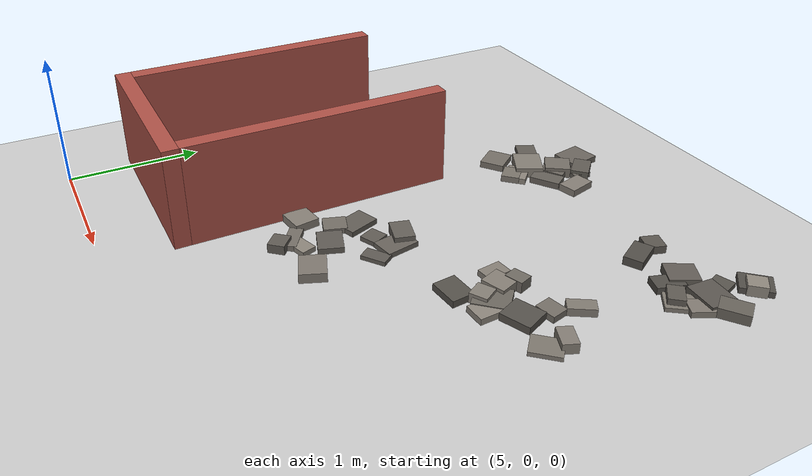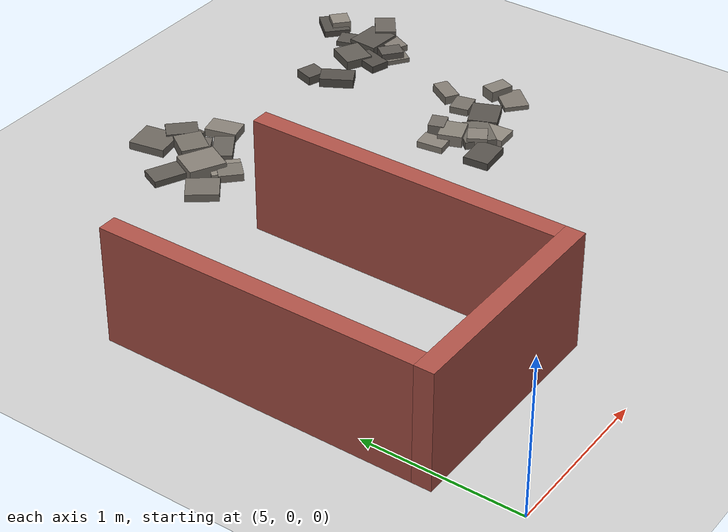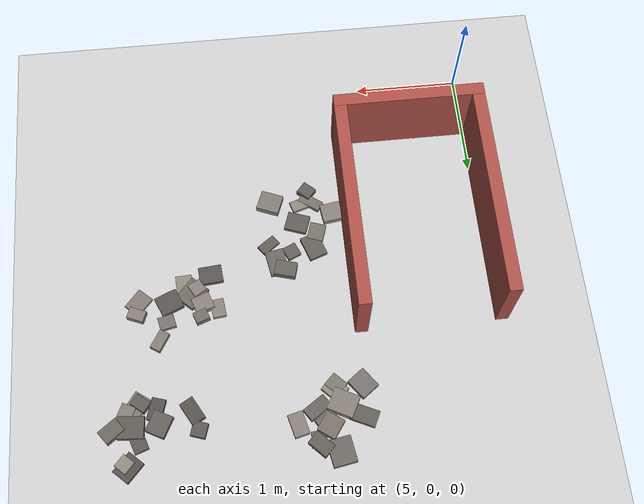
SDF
<sdf version="1.6">
 <world name="competition_arena">
  <include><uri>model://sun</uri></include>
  <include><uri>model://ground_plane</uri></include>
  <model name="dead_end">
   <static>true</static>
   <link name="structure">
    <collision name="left_collision">
     <pose>4.94 1.6 0.375 0 0 1.5707963</pose>
     <geometry><box><size>2 0.12 0.75</size></box></geometry>
     <surface><friction><ode><mu>0.9</mu><mu2>0.9</mu2></ode></friction></surface>
    </collision>
    <visual name="left_visual">
     <pose>4.94 1.6 0.375 0 0 1.5707963</pose>
     <geometry><box><size>2 0.12 0.75</size></box></geometry>
     <material><ambient>0.68 0.32 0.28 1</ambient><diffuse>0.68 0.32 0.28 1</diffuse></material>
    </visual>
    <collision name="right_collision">
     <pose>6.26 1.6 0.375 0 0 1.5707963</pose>
     <geometry><box><size>2 0.12 0.75</size></box></geometry>
     <surface><friction><ode><mu>0.9</mu><mu2>0.9</mu2></ode></friction></surface>
    </collision>
    <visual name="right_visual">
     <pose>6.26 1.6 0.375 0 0 1.5707963</pose>
     <geometry><box><size>2 0.12 0.75</size></box></geometry>
     <material><ambient>0.68 0.32 0.28 1</ambient><diffuse>0.68 0.32 0.28 1</diffuse></material>
    </visual>
    <collision name="closed_end_collision">
     <pose>5.6 0.54 0.375 0 0 0</pose>
     <geometry><box><size>1.44 0.12 0.75</size></box></geometry>
     <surface><friction><ode><mu>0.9</mu><mu2>0.9</mu2></ode></friction></surface>
    </collision>
    <visual name="closed_end_visual">
     <pose>5.6 0.54 0.375 0 0 0</pose>
     <geometry><box><size>1.44 0.12 0.75</size></box></geometry>
     <material><ambient>0.68 0.32 0.28 1</ambient><diffuse>0.68 0.32 0.28 1</diffuse></material>
    </visual>
   </link>
  </model>
  <model name="rubble_patch_1">
   <static>true</static>
   <link name="structure">
    <collision name="rock_00_collision">
     <pose>6.7544395 1.445329 0.021875733 0 0 2.8028648</pose>
     <geometry><box><size>0.21574126 0.18120394 0.043751466</size></box></geometry>
     <surface><friction><ode><mu>0.9</mu><mu2>0.9</mu2></ode></friction></surface>
    </collision>
    <visual name="rock_00_visual">
     <pose>6.7544395 1.445329 0.021875733 0 0 2.8028648</pose>
     <geometry><box><size>0.21574126 0.18120394 0.043751466</size></box></geometry>
     <material>
      <ambient>0.37357058 0.35489205 0.32874211 1</ambient>
      <diffuse>0.37357058 0.35489205 0.32874211 1</diffuse>
     </material>
    </visual>
    <collision name="rock_01_collision">
     <pose>7.0497635 1.6518465 0.01574493 0 0 0.6246669</pose>
     <geometry><box><size>0.18569619 0.10318432 0.031489861</size></box></geometry>
     <surface><friction><ode><mu>0.9</mu><mu2>0.9</mu2></ode></friction></surface>
    </collision>
    <visual name="rock_01_visual">
     <pose>7.0497635 1.6518465 0.01574493 0 0 0.6246669</pose>
     <geometry><box><size>0.18569619 0.10318432 0.031489861</size></box></geometry>
     <material>
      <ambient>0.37247311 0.35384946 0.32777634 1</ambient>
      <diffuse>0.37247311 0.35384946 0.32777634 1</diffuse>
     </material>
    </visual>
    <collision name="rock_02_collision">
     <pose>6.6045481 1.2313939 0.020511016 0 0 2.5315558</pose>
     <geometry><box><size>0.22522596 0.10077985 0.041022031</size></box></geometry>
     <surface><friction><ode><mu>0.9</mu><mu2>0.9</mu2></ode></friction></surface>
    </collision>
    <visual name="rock_02_visual">
     <pose>6.6045481 1.2313939 0.020511016 0 0 2.5315558</pose>
     <geometry><box><size>0.22522596 0.10077985 0.041022031</size></box></geometry>
     <material>
      <ambient>0.46142376 0.43835258 0.40605291 1</ambient>
      <diffuse>0.46142376 0.43835258 0.40605291 1</diffuse>
     </material>
    </visual>
    <collision name="rock_03_collision">
     <pose>6.7159734 1.251323 0.018886987 0 0 0.30384346</pose>
     <geometry><box><size>0.16375729 0.1111295 0.037773975</size></box></geometry>
     <surface><friction><ode><mu>0.9</mu><mu2>0.9</mu2></ode></friction></surface>
    </collision>
    <visual name="rock_03_visual">
     <pose>6.7159734 1.251323 0.018886987 0 0 0.30384346</pose>
     <geometry><box><size>0.16375729 0.1111295 0.037773975</size></box></geometry>
     <material>
      <ambient>0.54973114 0.52224458 0.4837634 1</ambient>
      <diffuse>0.54973114 0.52224458 0.4837634 1</diffuse>
     </material>
    </visual>
    <collision name="rock_04_collision">
     <pose>7.00104 1.2139275 0.035178207 0 0 1.1892008</pose>
     <geometry><box><size>0.18970965 0.21677389 0.070356414</size></box></geometry>
     <surface><friction><ode><mu>0.9</mu><mu2>0.9</mu2></ode></friction></surface>
    </collision>
    <visual name="rock_04_visual">
     <pose>7.00104 1.2139275 0.035178207 0 0 1.1892008</pose>
     <geometry><box><size>0.18970965 0.21677389 0.070356414</size></box></geometry>
     <material>
      <ambient>0.49513563 0.47037885 0.43571935 1</ambient>
      <diffuse>0.49513563 0.47037885 0.43571935 1</diffuse>
     </material>
    </visual>
    <collision name="rock_05_collision">
     <pose>6.4118914 1.368371 0.030462994 0 0 0.14396155</pose>
     <geometry><box><size>0.19505578 0.18454862 0.060925988</size></box></geometry>
     <surface><friction><ode><mu>0.9</mu><mu2>0.9</mu2></ode></friction></surface>
    </collision>
    <visual name="rock_05_visual">
     <pose>6.4118914 1.368371 0.030462994 0 0 0.14396155</pose>
     <geometry><box><size>0.19505578 0.18454862 0.060925988</size></box></geometry>
     <material>
      <ambient>0.52680966 0.50046917 0.4635925 1</ambient>
      <diffuse>0.52680966 0.50046917 0.4635925 1</diffuse>
     </material>
    </visual>
    <collision name="rock_06_collision">
     <pose>6.833509 1.7397461 0.016994799 0 0 1.9970616</pose>
     <geometry><box><size>0.13313019 0.13335683 0.033989599</size></box></geometry>
     <surface><friction><ode><mu>0.9</mu><mu2>0.9</mu2></ode></friction></surface>
    </collision>
    <visual name="rock_06_visual">
     <pose>6.833509 1.7397461 0.016994799 0 0 1.9970616</pose>
     <geometry><box><size>0.13313019 0.13335683 0.033989599</size></box></geometry>
     <material>
      <ambient>0.37586981 0.35707632 0.33076544 1</ambient>
      <diffuse>0.37586981 0.35707632 0.33076544 1</diffuse>
     </material>
    </visual>
    <collision name="rock_07_collision">
     <pose>6.6191553 1.7055646 0.020237676 0 0 1.9136415</pose>
     <geometry><box><size>0.2417651 0.17776425 0.040475352</size></box></geometry>
     <surface><friction><ode><mu>0.9</mu><mu2>0.9</mu2></ode></friction></surface>
    </collision>
    <visual name="rock_07_visual">
     <pose>6.6191553 1.7055646 0.020237676 0 0 1.9136415</pose>
     <geometry><box><size>0.2417651 0.17776425 0.040475352</size></box></geometry>
     <material>
      <ambient>0.38407468 0.36487094 0.33798572 1</ambient>
      <diffuse>0.38407468 0.36487094 0.33798572 1</diffuse>
     </material>
    </visual>
    <collision name="rock_08_collision">
     <pose>6.9827002 1.8380367 0.019085062 0 0 1.7497092</pose>
     <geometry><box><size>0.24863804 0.17679997 0.038170125</size></box></geometry>
     <surface><friction><ode><mu>0.9</mu><mu2>0.9</mu2></ode></friction></surface>
    </collision>
    <visual name="rock_08_visual">
     <pose>6.9827002 1.8380367 0.019085062 0 0 1.7497092</pose>
     <geometry><box><size>0.24863804 0.17679997 0.038170125</size></box></geometry>
     <material>
      <ambient>0.41106931 0.39051584 0.36174099 1</ambient>
      <diffuse>0.41106931 0.39051584 0.36174099 1</diffuse>
     </material>
    </visual>
    <collision name="rock_09_collision">
     <pose>6.6350073 1.1212456 0.034399998 0 0 0.84113277</pose>
     <geometry><box><size>0.12417303 0.13785437 0.068799996</size></box></geometry>
     <surface><friction><ode><mu>0.9</mu><mu2>0.9</mu2></ode></friction></surface>
    </collision>
    <visual name="rock_09_visual">
     <pose>6.6350073 1.1212456 0.034399998 0 0 0.84113277</pose>
     <geometry><box><size>0.12417303 0.13785437 0.068799996</size></box></geometry>
     <material>
      <ambient>0.37497154 0.35622296 0.32997495 1</ambient>
      <diffuse>0.37497154 0.35622296 0.32997495 1</diffuse>
     </material>
    </visual>
    <collision name="rock_10_collision">
     <pose>6.9060533 1.9239008 0.036909191 0 0 2.873136</pose>
     <geometry><box><size>0.20520703 0.14747583 0.073818381</size></box></geometry>
     <surface><friction><ode><mu>0.9</mu><mu2>0.9</mu2></ode></friction></surface>
    </collision>
    <visual name="rock_10_visual">
     <pose>6.9060533 1.9239008 0.036909191 0 0 2.873136</pose>
     <geometry><box><size>0.20520703 0.14747583 0.073818381</size></box></geometry>
     <material>
      <ambient>0.39552269 0.37574656 0.34805997 1</ambient>
      <diffuse>0.39552269 0.37574656 0.34805997 1</diffuse>
     </material>
    </visual>
    <collision name="rock_11_collision">
     <pose>6.5760982 1.5592132 0.021165688 0 0 2.8205938</pose>
     <geometry><box><size>0.15415641 0.17015032 0.042331375</size></box></geometry>
     <surface><friction><ode><mu>0.9</mu><mu2>0.9</mu2></ode></friction></surface>
    </collision>
    <visual name="rock_11_visual">
     <pose>6.5760982 1.5592132 0.021165688 0 0 2.8205938</pose>
     <geometry><box><size>0.15415641 0.17015032 0.042331375</size></box></geometry>
     <material>
      <ambient>0.45472835 0.43199193 0.40016095 1</ambient>
      <diffuse>0.45472835 0.43199193 0.40016095 1</diffuse>
     </material>
    </visual>
   </link>
  </model>
  <model name="rubble_patch_2">
   <static>true</static>
   <link name="structure">
    <collision name="rock_00_collision">
     <pose>7.7299734 2.3245127 0.03993844 0 0 0.3444729</pose>
     <geometry><box><size>0.13181822 0.10565397 0.07987688</size></box></geometry>
     <surface><friction><ode><mu>0.9</mu><mu2>0.9</mu2></ode></friction></surface>
    </collision>
    <visual name="rock_00_visual">
     <pose>7.7299734 2.3245127 0.03993844 0 0 0.3444729</pose>
     <geometry><box><size>0.13181822 0.10565397 0.07987688</size></box></geometry>
     <material>
      <ambient>0.44228631 0.42017199 0.38921195 1</ambient>
      <diffuse>0.44228631 0.42017199 0.38921195 1</diffuse>
     </material>
    </visual>
    <collision name="rock_01_collision">
     <pose>7.6211931 1.9124887 0.025553999 0 0 1.6622617</pose>
     <geometry><box><size>0.16961051 0.21953457 0.051107998</size></box></geometry>
     <surface><friction><ode><mu>0.9</mu><mu2>0.9</mu2></ode></friction></surface>
    </collision>
    <visual name="rock_01_visual">
     <pose>7.6211931 1.9124887 0.025553999 0 0 1.6622617</pose>
     <geometry><box><size>0.16961051 0.21953457 0.051107998</size></box></geometry>
     <material>
      <ambient>0.33524665 0.31848432 0.29501705 1</ambient>
      <diffuse>0.33524665 0.31848432 0.29501705 1</diffuse>
     </material>
    </visual>
    <collision name="rock_02_collision">
     <pose>8.3106275 2.1245484 0.015287026 0 0 0.83825606</pose>
     <geometry><box><size>0.20862235 0.16443644 0.030574051</size></box></geometry>
     <surface><friction><ode><mu>0.9</mu><mu2>0.9</mu2></ode></friction></surface>
    </collision>
    <visual name="rock_02_visual">
     <pose>8.3106275 2.1245484 0.015287026 0 0 0.83825606</pose>
     <geometry><box><size>0.20862235 0.16443644 0.030574051</size></box></geometry>
     <material>
      <ambient>0.49297324 0.46832457 0.43381645 1</ambient>
      <diffuse>0.49297324 0.46832457 0.43381645 1</diffuse>
     </material>
    </visual>
    <collision name="rock_03_collision">
     <pose>7.8048984 2.083617 0.025869131 0 0 0.82746111</pose>
     <geometry><box><size>0.24399607 0.20510235 0.051738263</size></box></geometry>
     <surface><friction><ode><mu>0.9</mu><mu2>0.9</mu2></ode></friction></surface>
    </collision>
    <visual name="rock_03_visual">
     <pose>7.8048984 2.083617 0.025869131 0 0 0.82746111</pose>
     <geometry><box><size>0.24399607 0.20510235 0.051738263</size></box></geometry>
     <material>
      <ambient>0.42889369 0.40744901 0.37742645 1</ambient>
      <diffuse>0.42889369 0.40744901 0.37742645 1</diffuse>
     </material>
    </visual>
    <collision name="rock_04_collision">
     <pose>7.7097988 2.1992996 0.037815696 0 0 1.9131363</pose>
     <geometry><box><size>0.15879782 0.17667394 0.075631392</size></box></geometry>
     <surface><friction><ode><mu>0.9</mu><mu2>0.9</mu2></ode></friction></surface>
    </collision>
    <visual name="rock_04_visual">
     <pose>7.7097988 2.1992996 0.037815696 0 0 1.9131363</pose>
     <geometry><box><size>0.15879782 0.17667394 0.075631392</size></box></geometry>
     <material>
      <ambient>0.52892446 0.50247823 0.46545352 1</ambient>
      <diffuse>0.52892446 0.50247823 0.46545352 1</diffuse>
     </material>
    </visual>
    <collision name="rock_05_collision">
     <pose>8.1252616 2.5219715 0.028484476 0 0 1.0183663</pose>
     <geometry><box><size>0.18894598 0.10006863 0.056968952</size></box></geometry>
     <surface><friction><ode><mu>0.9</mu><mu2>0.9</mu2></ode></friction></surface>
    </collision>
    <visual name="rock_05_visual">
     <pose>8.1252616 2.5219715 0.028484476 0 0 1.0183663</pose>
     <geometry><box><size>0.18894598 0.10006863 0.056968952</size></box></geometry>
     <material>
      <ambient>0.50687035 0.48152684 0.44604591 1</ambient>
      <diffuse>0.50687035 0.48152684 0.44604591 1</diffuse>
     </material>
    </visual>
    <collision name="rock_06_collision">
     <pose>8.3305101 2.2529487 0.036968047 0 0 2.7583485</pose>
     <geometry><box><size>0.15997684 0.10695102 0.073936094</size></box></geometry>
     <surface><friction><ode><mu>0.9</mu><mu2>0.9</mu2></ode></friction></surface>
    </collision>
    <visual name="rock_06_visual">
     <pose>8.3305101 2.2529487 0.036968047 0 0 2.7583485</pose>
     <geometry><box><size>0.15997684 0.10695102 0.073936094</size></box></geometry>
     <material>
      <ambient>0.51959973 0.49361974 0.45724776 1</ambient>
      <diffuse>0.51959973 0.49361974 0.45724776 1</diffuse>
     </material>
    </visual>
    <collision name="rock_07_collision">
     <pose>8.0244509 2.1569094 0.027149762 0 0 0.40335368</pose>
     <geometry><box><size>0.21887828 0.19190013 0.054299523</size></box></geometry>
     <surface><friction><ode><mu>0.9</mu><mu2>0.9</mu2></ode></friction></surface>
    </collision>
    <visual name="rock_07_visual">
     <pose>8.0244509 2.1569094 0.027149762 0 0 0.40335368</pose>
     <geometry><box><size>0.21887828 0.19190013 0.054299523</size></box></geometry>
     <material>
      <ambient>0.336611 0.31978045 0.29621768 1</ambient>
      <diffuse>0.336611 0.31978045 0.29621768 1</diffuse>
     </material>
    </visual>
    <collision name="rock_08_collision">
     <pose>7.5703466 2.2516126 0.021626416 0 0 1.6942486</pose>
     <geometry><box><size>0.17500793 0.12541578 0.043252831</size></box></geometry>
     <surface><friction><ode><mu>0.9</mu><mu2>0.9</mu2></ode></friction></surface>
    </collision>
    <visual name="rock_08_visual">
     <pose>7.5703466 2.2516126 0.021626416 0 0 1.6942486</pose>
     <geometry><box><size>0.17500793 0.12541578 0.043252831</size></box></geometry>
     <material>
      <ambient>0.52938393 0.50291473 0.46585786 1</ambient>
      <diffuse>0.52938393 0.50291473 0.46585786 1</diffuse>
     </material>
    </visual>
    <collision name="rock_09_collision">
     <pose>7.874618 1.999778 0.022792907 0 0 1.6260125</pose>
     <geometry><box><size>0.20448415 0.15257201 0.045585815</size></box></geometry>
     <surface><friction><ode><mu>0.9</mu><mu2>0.9</mu2></ode></friction></surface>
    </collision>
    <visual name="rock_09_visual">
     <pose>7.874618 1.999778 0.022792907 0 0 1.6260125</pose>
     <geometry><box><size>0.20448415 0.15257201 0.045585815</size></box></geometry>
     <material>
      <ambient>0.55883585 0.53089405 0.49177554 1</ambient>
      <diffuse>0.55883585 0.53089405 0.49177554 1</diffuse>
     </material>
    </visual>
    <collision name="rock_10_collision">
     <pose>8.054572 2.346999 0.023452139 0 0 0.22303136</pose>
     <geometry><box><size>0.14991492 0.12642609 0.046904278</size></box></geometry>
     <surface><friction><ode><mu>0.9</mu><mu2>0.9</mu2></ode></friction></surface>
    </collision>
    <visual name="rock_10_visual">
     <pose>8.054572 2.346999 0.023452139 0 0 0.22303136</pose>
     <geometry><box><size>0.14991492 0.12642609 0.046904278</size></box></geometry>
     <material>
      <ambient>0.46119409 0.43813439 0.4058508 1</ambient>
      <diffuse>0.46119409 0.43813439 0.4058508 1</diffuse>
     </material>
    </visual>
    <collision name="rock_11_collision">
     <pose>7.7536977 2.0420242 0.0376355 0 0 2.1016557</pose>
     <geometry><box><size>0.12921146 0.12856056 0.075271001</size></box></geometry>
     <surface><friction><ode><mu>0.9</mu><mu2>0.9</mu2></ode></friction></surface>
    </collision>
    <visual name="rock_11_visual">
     <pose>7.7536977 2.0420242 0.0376355 0 0 2.1016557</pose>
     <geometry><box><size>0.12921146 0.12856056 0.075271001</size></box></geometry>
     <material>
      <ambient>0.5263125 0.49999687 0.463155 1</ambient>
      <diffuse>0.5263125 0.49999687 0.463155 1</diffuse>
     </material>
    </visual>
   </link>
  </model>
  <model name="rubble_patch_3">
   <static>true</static>
   <link name="structure">
    <collision name="rock_00_collision">
     <pose>6.6364726 3.459571 0.038387856 0 0 2.5368266</pose>
     <geometry><box><size>0.18144723 0.19415433 0.076775712</size></box></geometry>
     <surface><friction><ode><mu>0.9</mu><mu2>0.9</mu2></ode></friction></surface>
    </collision>
    <visual name="rock_00_visual">
     <pose>6.6364726 3.459571 0.038387856 0 0 2.5368266</pose>
     <geometry><box><size>0.18144723 0.19415433 0.076775712</size></box></geometry>
     <material>
      <ambient>0.45705034 0.43419783 0.4022043 1</ambient>
      <diffuse>0.45705034 0.43419783 0.4022043 1</diffuse>
     </material>
    </visual>
    <collision name="rock_01_collision">
     <pose>6.6512392 3.4303957 0.02577628 0 0 2.1154371</pose>
     <geometry><box><size>0.18071321 0.1874891 0.051552559</size></box></geometry>
     <surface><friction><ode><mu>0.9</mu><mu2>0.9</mu2></ode></friction></surface>
    </collision>
    <visual name="rock_01_visual">
     <pose>6.6512392 3.4303957 0.02577628 0 0 2.1154371</pose>
     <geometry><box><size>0.18071321 0.1874891 0.051552559</size></box></geometry>
     <material>
      <ambient>0.42165887 0.40057593 0.37105981 1</ambient>
      <diffuse>0.42165887 0.40057593 0.37105981 1</diffuse>
     </material>
    </visual>
    <collision name="rock_02_collision">
     <pose>6.7404742 3.2859775 0.025065532 0 0 0.59755891</pose>
     <geometry><box><size>0.23201743 0.12983876 0.050131064</size></box></geometry>
     <surface><friction><ode><mu>0.9</mu><mu2>0.9</mu2></ode></friction></surface>
    </collision>
    <visual name="rock_02_visual">
     <pose>6.7404742 3.2859775 0.025065532 0 0 0.59755891</pose>
     <geometry><box><size>0.23201743 0.12983876 0.050131064</size></box></geometry>
     <material>
      <ambient>0.40143263 0.38136099 0.35326071 1</ambient>
      <diffuse>0.40143263 0.38136099 0.35326071 1</diffuse>
     </material>
    </visual>
    <collision name="rock_03_collision">
     <pose>6.322817 3.3927394 0.021963629 0 0 2.706008</pose>
     <geometry><box><size>0.24002453 0.15317569 0.043927257</size></box></geometry>
     <surface><friction><ode><mu>0.9</mu><mu2>0.9</mu2></ode></friction></surface>
    </collision>
    <visual name="rock_03_visual">
     <pose>6.322817 3.3927394 0.021963629 0 0 2.706008</pose>
     <geometry><box><size>0.24002453 0.15317569 0.043927257</size></box></geometry>
     <material>
      <ambient>0.37995355 0.36095587 0.33435912 1</ambient>
      <diffuse>0.37995355 0.36095587 0.33435912 1</diffuse>
     </material>
    </visual>
    <collision name="rock_04_collision">
     <pose>6.5038045 3.2685267 0.039982062 0 0 2.6662563</pose>
     <geometry><box><size>0.24596951 0.21116404 0.079964123</size></box></geometry>
     <surface><friction><ode><mu>0.9</mu><mu2>0.9</mu2></ode></friction></surface>
    </collision>
    <visual name="rock_04_visual">
     <pose>6.5038045 3.2685267 0.039982062 0 0 2.6662563</pose>
     <geometry><box><size>0.24596951 0.21116404 0.079964123</size></box></geometry>
     <material>
      <ambient>0.52064662 0.49461429 0.45816903 1</ambient>
      <diffuse>0.52064662 0.49461429 0.45816903 1</diffuse>
     </material>
    </visual>
    <collision name="rock_05_collision">
     <pose>6.7574042 3.571231 0.020343682 0 0 3.095439</pose>
     <geometry><box><size>0.1276226 0.14547677 0.040687365</size></box></geometry>
     <surface><friction><ode><mu>0.9</mu><mu2>0.9</mu2></ode></friction></surface>
    </collision>
    <visual name="rock_05_visual">
     <pose>6.7574042 3.571231 0.020343682 0 0 3.095439</pose>
     <geometry><box><size>0.1276226 0.14547677 0.040687365</size></box></geometry>
     <material>
      <ambient>0.41624967 0.39543719 0.36629971 1</ambient>
      <diffuse>0.41624967 0.39543719 0.36629971 1</diffuse>
     </material>
    </visual>
    <collision name="rock_06_collision">
     <pose>6.561995 3.6966484 0.026375209 0 0 1.7459977</pose>
     <geometry><box><size>0.24445129 0.21945072 0.052750418</size></box></geometry>
     <surface><friction><ode><mu>0.9</mu><mu2>0.9</mu2></ode></friction></surface>
    </collision>
    <visual name="rock_06_visual">
     <pose>6.561995 3.6966484 0.026375209 0 0 1.7459977</pose>
     <geometry><box><size>0.24445129 0.21945072 0.052750418</size></box></geometry>
     <material>
      <ambient>0.4215218 0.40044571 0.37093918 1</ambient>
      <diffuse>0.4215218 0.40044571 0.37093918 1</diffuse>
     </material>
    </visual>
    <collision name="rock_07_collision">
     <pose>6.5650867 3.1264275 0.022417696 0 0 2.3498345</pose>
     <geometry><box><size>0.19529344 0.16506342 0.044835391</size></box></geometry>
     <surface><friction><ode><mu>0.9</mu><mu2>0.9</mu2></ode></friction></surface>
    </collision>
    <visual name="rock_07_visual">
     <pose>6.5650867 3.1264275 0.022417696 0 0 2.3498345</pose>
     <geometry><box><size>0.19529344 0.16506342 0.044835391</size></box></geometry>
     <material>
      <ambient>0.55249025 0.52486574 0.48619142 1</ambient>
      <diffuse>0.55249025 0.52486574 0.48619142 1</diffuse>
     </material>
    </visual>
    <collision name="rock_08_collision">
     <pose>6.9219933 3.4208978 0.02757126 0 0 0.25167759</pose>
     <geometry><box><size>0.14046625 0.21529347 0.055142519</size></box></geometry>
     <surface><friction><ode><mu>0.9</mu><mu2>0.9</mu2></ode></friction></surface>
    </collision>
    <visual name="rock_08_visual">
     <pose>6.9219933 3.4208978 0.02757126 0 0 0.25167759</pose>
     <geometry><box><size>0.14046625 0.21529347 0.055142519</size></box></geometry>
     <material>
      <ambient>0.52465277 0.49842014 0.46169444 1</ambient>
      <diffuse>0.52465277 0.49842014 0.46169444 1</diffuse>
     </material>
    </visual>
    <collision name="rock_09_collision">
     <pose>6.7362062 3.6192843 0.031880314 0 0 0.77350833</pose>
     <geometry><box><size>0.13558526 0.20683448 0.063760628</size></box></geometry>
     <surface><friction><ode><mu>0.9</mu><mu2>0.9</mu2></ode></friction></surface>
    </collision>
    <visual name="rock_09_visual">
     <pose>6.7362062 3.6192843 0.031880314 0 0 0.77350833</pose>
     <geometry><box><size>0.13558526 0.20683448 0.063760628</size></box></geometry>
     <material>
      <ambient>0.37644893 0.35762649 0.33127506 1</ambient>
      <diffuse>0.37644893 0.35762649 0.33127506 1</diffuse>
     </material>
    </visual>
    <collision name="rock_10_collision">
     <pose>6.3064864 3.101822 0.025480623 0 0 0.6416992</pose>
     <geometry><box><size>0.18796175 0.21216475 0.050961246</size></box></geometry>
     <surface><friction><ode><mu>0.9</mu><mu2>0.9</mu2></ode></friction></surface>
    </collision>
    <visual name="rock_10_visual">
     <pose>6.3064864 3.101822 0.025480623 0 0 0.6416992</pose>
     <geometry><box><size>0.18796175 0.21216475 0.050961246</size></box></geometry>
     <material>
      <ambient>0.46008135 0.43707728 0.40487159 1</ambient>
      <diffuse>0.46008135 0.43707728 0.40487159 1</diffuse>
     </material>
    </visual>
    <collision name="rock_11_collision">
     <pose>6.5536492 3.0850918 0.024894646 0 0 2.362052</pose>
     <geometry><box><size>0.15899962 0.13794126 0.049789292</size></box></geometry>
     <surface><friction><ode><mu>0.9</mu><mu2>0.9</mu2></ode></friction></surface>
    </collision>
    <visual name="rock_11_visual">
     <pose>6.5536492 3.0850918 0.024894646 0 0 2.362052</pose>
     <geometry><box><size>0.15899962 0.13794126 0.049789292</size></box></geometry>
     <material>
      <ambient>0.48120565 0.45714537 0.42346098 1</ambient>
      <diffuse>0.48120565 0.45714537 0.42346098 1</diffuse>
     </material>
    </visual>
   </link>
  </model>
  <model name="rubble_patch_4">
   <static>true</static>
   <link name="structure">
    <collision name="rock_00_collision">
     <pose>8.4735348 3.6340952 0.039961361 0 0 0.83315167</pose>
     <geometry><box><size>0.12952389 0.12557852 0.079922722</size></box></geometry>
     <surface><friction><ode><mu>0.9</mu><mu2>0.9</mu2></ode></friction></surface>
    </collision>
    <visual name="rock_00_visual">
     <pose>8.4735348 3.6340952 0.039961361 0 0 0.83315167</pose>
     <geometry><box><size>0.12952389 0.12557852 0.079922722</size></box></geometry>
     <material>
      <ambient>0.55906315 0.53110999 0.49197557 1</ambient>
      <diffuse>0.55906315 0.53110999 0.49197557 1</diffuse>
     </material>
    </visual>
    <collision name="rock_01_collision">
     <pose>8.5857512 3.3280377 0.036981756 0 0 2.2102359</pose>
     <geometry><box><size>0.14050709 0.20004939 0.073963512</size></box></geometry>
     <surface><friction><ode><mu>0.9</mu><mu2>0.9</mu2></ode></friction></surface>
    </collision>
    <visual name="rock_01_visual">
     <pose>8.5857512 3.3280377 0.036981756 0 0 2.2102359</pose>
     <geometry><box><size>0.14050709 0.20004939 0.073963512</size></box></geometry>
     <material>
      <ambient>0.4086865 0.38825218 0.35964412 1</ambient>
      <diffuse>0.4086865 0.38825218 0.35964412 1</diffuse>
     </material>
    </visual>
    <collision name="rock_02_collision">
     <pose>7.858513 3.2113803 0.031349408 0 0 2.0840971</pose>
     <geometry><box><size>0.22622354 0.13592545 0.062698816</size></box></geometry>
     <surface><friction><ode><mu>0.9</mu><mu2>0.9</mu2></ode></friction></surface>
    </collision>
    <visual name="rock_02_visual">
     <pose>7.858513 3.2113803 0.031349408 0 0 2.0840971</pose>
     <geometry><box><size>0.22622354 0.13592545 0.062698816</size></box></geometry>
     <material>
      <ambient>0.32187755 0.30578367 0.28325224 1</ambient>
      <diffuse>0.32187755 0.30578367 0.28325224 1</diffuse>
     </material>
    </visual>
    <collision name="rock_03_collision">
     <pose>8.352914 3.4382647 0.017885717 0 0 1.9001289</pose>
     <geometry><box><size>0.19191907 0.13268179 0.035771434</size></box></geometry>
     <surface><friction><ode><mu>0.9</mu><mu2>0.9</mu2></ode></friction></surface>
    </collision>
    <visual name="rock_03_visual">
     <pose>8.352914 3.4382647 0.017885717 0 0 1.9001289</pose>
     <geometry><box><size>0.19191907 0.13268179 0.035771434</size></box></geometry>
     <material>
      <ambient>0.34568863 0.3284042 0.304206 1</ambient>
      <diffuse>0.34568863 0.3284042 0.304206 1</diffuse>
     </material>
    </visual>
    <collision name="rock_04_collision">
     <pose>8.1589646 3.3011419 0.030855949 0 0 2.6581132</pose>
     <geometry><box><size>0.18350914 0.20864038 0.061711898</size></box></geometry>
     <surface><friction><ode><mu>0.9</mu><mu2>0.9</mu2></ode></friction></surface>
    </collision>
    <visual name="rock_04_visual">
     <pose>8.1589646 3.3011419 0.030855949 0 0 2.6581132</pose>
     <geometry><box><size>0.18350914 0.20864038 0.061711898</size></box></geometry>
     <material>
      <ambient>0.38335614 0.36418833 0.3373534 1</ambient>
      <diffuse>0.38335614 0.36418833 0.3373534 1</diffuse>
     </material>
    </visual>
    <collision name="rock_05_collision">
     <pose>8.4449881 3.6604834 0.021917006 0 0 0.82295673</pose>
     <geometry><box><size>0.2202455 0.17645361 0.043834011</size></box></geometry>
     <surface><friction><ode><mu>0.9</mu><mu2>0.9</mu2></ode></friction></surface>
    </collision>
    <visual name="rock_05_visual">
     <pose>8.4449881 3.6604834 0.021917006 0 0 0.82295673</pose>
     <geometry><box><size>0.2202455 0.17645361 0.043834011</size></box></geometry>
     <material>
      <ambient>0.32085097 0.30480842 0.28234885 1</ambient>
      <diffuse>0.32085097 0.30480842 0.28234885 1</diffuse>
     </material>
    </visual>
    <collision name="rock_06_collision">
     <pose>8.1815935 3.1662688 0.025692173 0 0 2.8397754</pose>
     <geometry><box><size>0.1297817 0.20597277 0.051384346</size></box></geometry>
     <surface><friction><ode><mu>0.9</mu><mu2>0.9</mu2></ode></friction></surface>
    </collision>
    <visual name="rock_06_visual">
     <pose>8.1815935 3.1662688 0.025692173 0 0 2.8397754</pose>
     <geometry><box><size>0.1297817 0.20597277 0.051384346</size></box></geometry>
     <material>
      <ambient>0.32232073 0.30620469 0.28364224 1</ambient>
      <diffuse>0.32232073 0.30620469 0.28364224 1</diffuse>
     </material>
    </visual>
    <collision name="rock_07_collision">
     <pose>7.8056487 3.3838426 0.029562739 0 0 2.8242336</pose>
     <geometry><box><size>0.13656792 0.136991 0.059125478</size></box></geometry>
     <surface><friction><ode><mu>0.9</mu><mu2>0.9</mu2></ode></friction></surface>
    </collision>
    <visual name="rock_07_visual">
     <pose>7.8056487 3.3838426 0.029562739 0 0 2.8242336</pose>
     <geometry><box><size>0.13656792 0.136991 0.059125478</size></box></geometry>
     <material>
      <ambient>0.35554251 0.33776538 0.31287741 1</ambient>
      <diffuse>0.35554251 0.33776538 0.31287741 1</diffuse>
     </material>
    </visual>
    <collision name="rock_08_collision">
     <pose>8.3192982 3.0999248 0.037473116 0 0 2.4508075</pose>
     <geometry><box><size>0.15243887 0.11233523 0.074946232</size></box></geometry>
     <surface><friction><ode><mu>0.9</mu><mu2>0.9</mu2></ode></friction></surface>
    </collision>
    <visual name="rock_08_visual">
     <pose>8.3192982 3.0999248 0.037473116 0 0 2.4508075</pose>
     <geometry><box><size>0.15243887 0.11233523 0.074946232</size></box></geometry>
     <material>
      <ambient>0.37041837 0.35189745 0.32596816 1</ambient>
      <diffuse>0.37041837 0.35189745 0.32596816 1</diffuse>
     </material>
    </visual>
    <collision name="rock_09_collision">
     <pose>8.4141459 3.3091258 0.030516538 0 0 3.0668417</pose>
     <geometry><box><size>0.24088453 0.20375268 0.061033076</size></box></geometry>
     <surface><friction><ode><mu>0.9</mu><mu2>0.9</mu2></ode></friction></surface>
    </collision>
    <visual name="rock_09_visual">
     <pose>8.4141459 3.3091258 0.030516538 0 0 3.0668417</pose>
     <geometry><box><size>0.24088453 0.20375268 0.061033076</size></box></geometry>
     <material>
      <ambient>0.3570928 0.33923816 0.31424167 1</ambient>
      <diffuse>0.3570928 0.33923816 0.31424167 1</diffuse>
     </material>
    </visual>
    <collision name="rock_10_collision">
     <pose>8.357427 3.1079496 0.015619659 0 0 2.520296</pose>
     <geometry><box><size>0.16318411 0.21169791 0.031239318</size></box></geometry>
     <surface><friction><ode><mu>0.9</mu><mu2>0.9</mu2></ode></friction></surface>
    </collision>
    <visual name="rock_10_visual">
     <pose>8.357427 3.1079496 0.015619659 0 0 2.520296</pose>
     <geometry><box><size>0.16318411 0.21169791 0.031239318</size></box></geometry>
     <material>
      <ambient>0.49677547 0.4719367 0.43716242 1</ambient>
      <diffuse>0.49677547 0.4719367 0.43716242 1</diffuse>
     </material>
    </visual>
    <collision name="rock_11_collision">
     <pose>8.4661631 3.194494 0.021670143 0 0 2.6973503</pose>
     <geometry><box><size>0.13405243 0.20466001 0.043340285</size></box></geometry>
     <surface><friction><ode><mu>0.9</mu><mu2>0.9</mu2></ode></friction></surface>
    </collision>
    <visual name="rock_11_visual">
     <pose>8.4661631 3.194494 0.021670143 0 0 2.6973503</pose>
     <geometry><box><size>0.13405243 0.20466001 0.043340285</size></box></geometry>
     <material>
      <ambient>0.50896988 0.48352139 0.4478935 1</ambient>
      <diffuse>0.50896988 0.48352139 0.4478935 1</diffuse>
     </material>
    </visual>
   </link>
  </model>
 </world>
</sdf>
